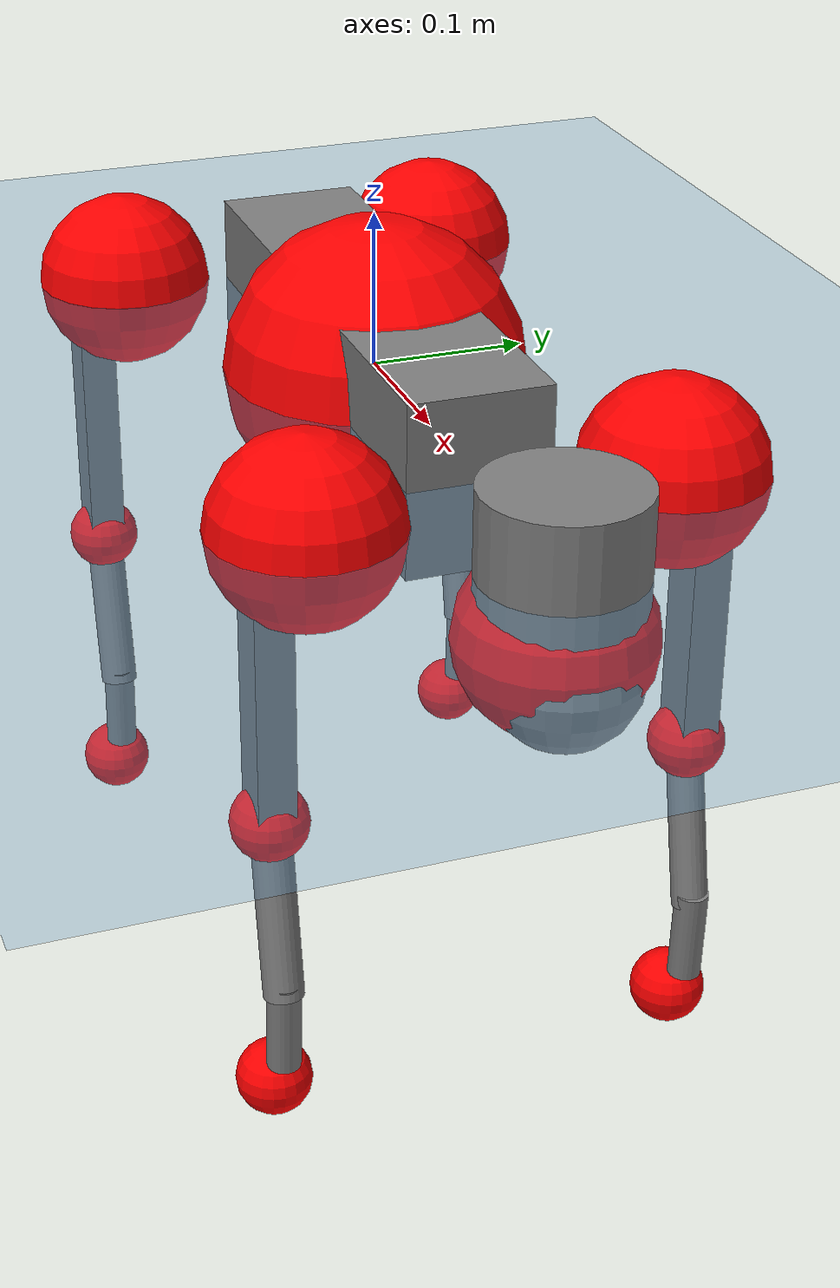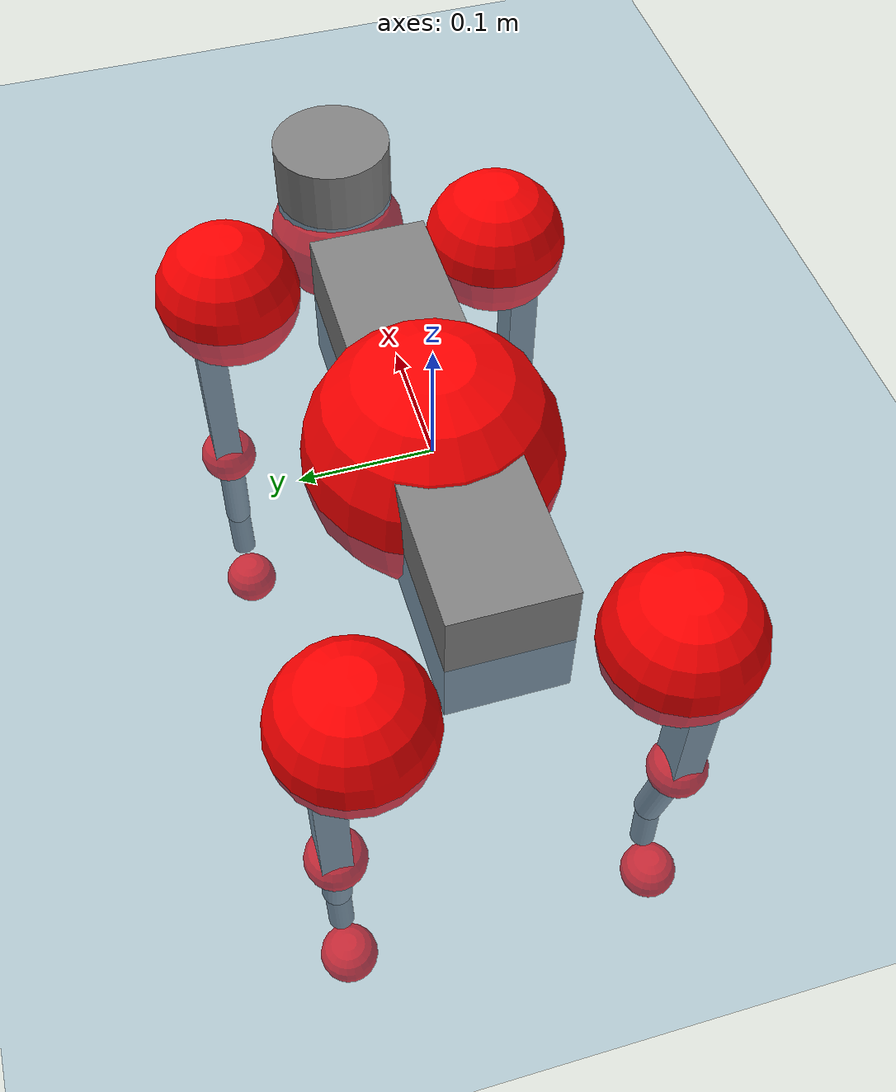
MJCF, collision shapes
<mujoco model="go2">
  <compiler angle="radian" assetdir="assets" balanceinertia="true" inertiafromgeom="false"/>

  <option timestep="0.005" density="1.2" viscosity="2e-05"/>

  <size nkey="1"/>

  <visual>
    <quality shadowsize="8192"/>
    <map shadowclip="0.5"/>
  </visual>

  <default>
    <default class="/">
      <geom contype="0" conaffinity="0" group="1" solref="-1000 -80"/>
      <site size="0.01 0.005 0.005" group="5"/>
      <general forcelimited="true" biastype="affine" gainprm="20" biasprm="0 -20 -0.5"/>
      <default class="go2">
        <joint armature="0.01" damping="0.01" frictionloss="0.2"/>
        <geom condim="1" margin="0.001"/>
        <default class="visual">
          <geom type="mesh" group="2"/>
        </default>
        <default class="collision">
          <geom group="3"/>
          <default class="foot">
            <geom size="0.022 0 0" condim="6" priority="1" friction="0.8 0.02 0.01" solimp="0.015 1 0.022"/>
          </default>
        </default>
        <default class="reward_collision_sphere">
          <geom group="5" rgba="1 0 0 1"/>
        </default>
      </default>
    </default>
  </default>

  <asset>
    <texture type="skybox" colorspace="auto" name="//unnamed_texture_0" builtin="gradient" rgb1="0.95 0.95 0.95" rgb2="0.95 0.95 0.95" width="100" height="600"/>
    <texture type="2d" colorspace="auto" name="texplane" builtin="checker" rgb1="0.345 0.575 0.748" rgb2="0.345 0.575 0.748" markrgb="1 1 1" width="512" height="512"/>
    <material name="MatPlane" class="/" texture="texplane" texuniform="true" texrepeat="2 2" specular="0.9"/>
    <material name="metal" class="/" rgba="0.9 0.95 0.95 1"/>
    <material name="black" class="/" rgba="0 0 0 1"/>
    <material name="white" class="/"/>
    <material name="gray" class="/" rgba="0.671705 0.692426 0.77427 1"/>
    <mesh name="base_0" class="/" file="base_0.obj"/>
    <mesh name="base_1" class="/" file="base_1.obj"/>
    <mesh name="base_2" class="/" file="base_2.obj"/>
    <mesh name="base_3" class="/" file="base_3.obj"/>
    <mesh name="base_4" class="/" file="base_4.obj"/>
    <mesh name="hip_0" class="/" file="hip_0.obj"/>
    <mesh name="hip_1" class="/" file="hip_1.obj"/>
    <mesh name="thigh_0" class="/" file="thigh_0.obj"/>
    <mesh name="thigh_1" class="/" file="thigh_1.obj"/>
    <mesh name="thigh_mirror_0" class="/" file="thigh_mirror_0.obj"/>
    <mesh name="thigh_mirror_1" class="/" file="thigh_mirror_1.obj"/>
    <mesh name="calf_0" class="/" file="calf_0.obj"/>
    <mesh name="calf_1" class="/" file="calf_1.obj"/>
    <mesh name="calf_mirror_0" class="/" file="calf_mirror_0.obj"/>
    <mesh name="calf_mirror_1" class="/" file="calf_mirror_1.obj"/>
    <mesh name="foot" class="/" file="foot.obj"/>
  </asset>

  <worldbody>
    <geom name="floor" class="/" size="100 100 0.125" type="plane" group="0" material="MatPlane"/>
    <light name="toplight_shadow" class="/" pos="0 0 5" dir="0.0990148 0.0990148 -0.990148" type="directional" ambient="0.04 0.04 0.04" diffuse="0.55 0.55 0.55" specular="0.12 0.12 0.12"/>
    <light name="toplight_fill" class="/" pos="0 0 5" dir="0.0990148 0.0990148 -0.990148" type="directional" castshadow="false" ambient="0.04 0.04 0.04" diffuse="0.3 0.3 0.3" specular="0.08 0.08 0.08"/>
    <body name="trunk" childclass="go2" pos="0.000514843 0.000219647 -0.00154648" quat="1 -0.000491955 0.000264019 -0.000184578">
      <inertial pos="0.0229102 0.000794521 -0.0049287" quat="0.00144098 0.712995 0.00295065 0.701162" mass="6.51202" diaginertia="0.144222 0.0830549 0.014332"/>
      <joint name="//unnamed_joint_0" type="free" armature="0" damping="0" frictionloss="0"/>
      <geom name="//unnamed_geom_1" class="visual" material="black" mesh="base_0"/>
      <geom name="//unnamed_geom_2" class="visual" material="black" mesh="base_1"/>
      <geom name="//unnamed_geom_3" class="visual" material="black" mesh="base_2"/>
      <geom name="//unnamed_geom_4" class="visual" material="white" mesh="base_3"/>
      <geom name="//unnamed_geom_5" class="visual" material="gray" mesh="base_4"/>
      <geom name="trunk_1" class="collision" size="0.182927 0.0454643 0.0554324" type="box"/>
      <geom name="trunk_2" class="collision" size="0.0486249 0.0437624" pos="0.301602 0 0.00895411" type="cylinder"/>
      <geom name="trunk_3" class="collision" size="0.0457074" pos="0.310068 0 -0.0537247"/>
      <geom name="//unnamed_geom_9" class="reward_collision_sphere" size="0.0972498"/>
      <geom name="//unnamed_geom_10" class="reward_collision_sphere" size="0.0583499" pos="0.296311 0 -0.0402935"/>
      <site name="imu" pos="-0.0253591 -0.00393808 0.0371798" size="0.00972498"/>
      <camera name="track" pos="0 -1.92766 0" quat="0.707107 0.707107 0 0" mode="trackcom"/>
      <camera name="ego_camera" pos="0.330175 0 0.0402935" quat="-0.5 -0.5 0.5 0.5"/>
      <body name="FL_hip" pos="0.203725 0.0439427 0.000794482" quat="1 -8.86554e-05 -3.47558e-05 -9.03577e-05">
        <inertial pos="-0.00637802 0.00178223 -0.00196159" quat="0.502713 0.498724 0.504697 0.493796" mass="0.630018" diaginertia="0.00118366 0.00050313 0.000279379"/>
        <joint name="FL_hip_joint" pos="0 0 0" axis="0.999992 0.000678102 -0.00389689" range="-1.05146 1.03132" armature="0.00972781" damping="0.00399964" frictionloss="0.185614"/>
        <geom name="//unnamed_geom_11" class="visual" material="metal" mesh="hip_0"/>
        <geom name="//unnamed_geom_12" class="visual" material="gray" mesh="hip_1"/>
        <geom name="//unnamed_geom_13" class="collision" size="0.0447349 0.01945" pos="0 0.0771064 0" quat="0.707107 0.707107 0 0" type="cylinder"/>
        <geom name="//unnamed_geom_14" class="reward_collision_sphere" size="0.0583499" pos="0 0.0674681 0"/>
        <body name="FL_thigh" pos="-0.00123129 0.0908085 0.00210691" quat="1 0.000147277 -2.961e-07 6.63125e-06">
          <inertial pos="-0.00429337 -0.0212992 -0.0288586" quat="0.830661 0.0852826 -0.0216858 0.549781" mass="1.05077" diaginertia="0.00784997 0.00481365 0.000499344"/>
          <joint name="FL_thigh_joint" pos="0 0 0" axis="0.00722165 0.999967 0.00359929" stiffness="0.00200161" range="-1.55219 3.48945" armature="0.00979551" damping="0.00695191" frictionloss="0.194034"/>
          <geom name="//unnamed_geom_15" class="visual" material="metal" mesh="thigh_0"/>
          <geom name="//unnamed_geom_16" class="visual" material="gray" mesh="thigh_1"/>
          <geom name="//unnamed_geom_17" class="collision" size="0.103571 0.0119131 0.0165325" pos="0 0 -0.0953613" quat="0.707107 0 0.707107 0" type="box"/>
          <body name="FL_calf" pos="-0.000924044 -0.000751867 -0.190498" quat="1 1.92209e-05 1.14331e-05 -3.1194e-05">
            <inertial pos="0.00480757 -0.00170621 -0.125999" quat="0.710088 0.000962821 -0.00427313 0.7041" mass="0.223177" diaginertia="0.00195869 0.00122772 3.06235e-05"/>
            <joint name="FL_calf_joint" pos="0 0 0" axis="0.00127612 0.999999 -0.000301826" stiffness="0.00643845" range="-2.76241 -0.851839" armature="0.0096639" damping="0.0109173" frictionloss="0.210938"/>
            <geom name="//unnamed_geom_18" class="visual" material="gray" mesh="calf_0"/>
            <geom name="//unnamed_geom_19" class="visual" material="black" mesh="calf_1"/>
            <geom name="FL_calf0" class="collision" size="0.01167 0.0583499" pos="0.00846602 0 -0.0537247" quat="0.994493 0 -0.104807 0" type="cylinder"/>
            <geom name="//unnamed_geom_21" class="collision" size="0.0106975 0.0316062" pos="0.021165 0 -0.132521" quat="0.999688 0 0.0249974 0" type="cylinder"/>
            <geom name="//unnamed_geom_22" class="visual" pos="0 0 -0.190723" quat="1 0 0 0" material="black" mesh="foot"/>
            <geom name="FL_foot" class="foot" size="0.0173559" pos="-0.0021165 0 -0.190723"/>
            <geom name="//unnamed_geom_24" class="reward_collision_sphere" size="0.0243124"/>
            <geom name="//unnamed_geom_25" class="reward_collision_sphere" size="0.0243124" pos="-0.0021165 0 -0.190723"/>
            <site name="FL_foot" class="foot" pos="-0.0021165 0 -0.190723" size="0.00972498"/>
          </body>
        </body>
      </body>
      <body name="FR_hip" pos="0.205316 -0.0451784 -0.000376205" quat="1 -0.000792401 -0.00055768 1.55234e-05">
        <inertial pos="-0.00497794 -0.00176986 -0.000744007" quat="0.492035 0.508525 0.503317 0.495959" mass="0.640261" diaginertia="0.00118698 0.00050057 0.000279855"/>
        <joint name="FR_hip_joint" pos="0 0 0" axis="0.999998 0.000648143 -0.00190425" range="-1.07895 1.06762" armature="0.009672" damping="0.0112147" frictionloss="0.18921"/>
        <geom name="//unnamed_geom_26" class="visual" pos="0 5.96045e-10 2.55656e-08" quat="4.63268e-05 1 0 0" material="metal" mesh="hip_0"/>
        <geom name="//unnamed_geom_27" class="visual" pos="0 9.6626e-10 -6.32335e-08" quat="4.63268e-05 1 0 0" material="gray" mesh="hip_1"/>
        <geom name="//unnamed_geom_28" class="collision" size="0.0447349 0.01945" pos="0 -0.0771064 0" quat="0.707107 0.707107 0 0" type="cylinder"/>
        <geom name="//unnamed_geom_29" class="reward_collision_sphere" size="0.0583499" pos="0 -0.0674681 0"/>
        <body name="FR_thigh" pos="9.81005e-05 -0.0915195 0.00231152" quat="1 6.3987e-06 -0.000361005 -0.000133467">
          <inertial pos="-0.00347598 0.0211869 -0.0282576" quat="0.552815 -0.0206896 0.0849956 0.8287" mass="1.06139" diaginertia="0.00787484 0.00484359 0.000500186"/>
          <joint name="FR_thigh_joint" pos="0 0 0" axis="0.00269252 -0.999996 -0.00106502" stiffness="0.00302096" range="-3.48999 1.58508" armature="0.0102222" damping="0.00554078" frictionloss="0.192781"/>
          <geom name="//unnamed_geom_30" class="visual" material="metal" mesh="thigh_mirror_0"/>
          <geom name="//unnamed_geom_31" class="visual" material="gray" mesh="thigh_mirror_1"/>
          <geom name="//unnamed_geom_32" class="collision" size="0.103571 0.0119131 0.0165325" pos="0 0 -0.0953613" quat="0.707107 0 0.707107 0" type="box"/>
          <body name="FR_calf" pos="-0.00150963 0.000159369 -0.190224" quat="1 -1.55021e-06 6.47065e-05 -0.000135563">
            <inertial pos="0.00659529 -0.000279494 -0.126434" quat="0.701211 -0.00183898 0.00934676 0.71289" mass="0.21761" diaginertia="0.00195139 0.00121236 3.04e-05"/>
            <joint name="FR_calf_joint" pos="0 0 0" axis="-0.000783963 -1 0.000285489" range="0.841811 2.71704" armature="0.00960383" damping="0.0038144" frictionloss="0.204034"/>
            <geom name="//unnamed_geom_33" class="visual" material="gray" mesh="calf_mirror_0"/>
            <geom name="//unnamed_geom_34" class="visual" material="black" mesh="calf_mirror_1"/>
            <geom name="FR_calf0" class="collision" size="0.0126425 0.0583499" pos="0.0105825 0 -0.0537247" quat="0.995004 0 -0.0998334 0" type="cylinder"/>
            <geom name="//unnamed_geom_36" class="collision" size="0.0106975 0.0316062" pos="0.021165 0 -0.132521" quat="0.999688 0 0.0249974 0" type="cylinder"/>
            <geom name="//unnamed_geom_37" class="visual" pos="0 0 -0.190723" quat="1 0 0 0" material="black" mesh="foot"/>
            <geom name="FR_foot" class="foot" size="0.0213684" pos="-0.0021165 0 -0.190723"/>
            <geom name="//unnamed_geom_39" class="reward_collision_sphere" size="0.0243124"/>
            <geom name="//unnamed_geom_40" class="reward_collision_sphere" size="0.0243124" pos="-0.0021165 0 -0.190723"/>
            <site name="FR_foot" class="foot" pos="-0.0021165 0 -0.190723" size="0.00972498"/>
          </body>
        </body>
      </body>
      <body name="RL_hip" pos="-0.204908 0.0451897 0.0010842" quat="1 -5.42567e-05 -7.75139e-05 9.81011e-05">
        <inertial pos="0.0060407 0.00152757 -0.00146762" quat="0.50227 0.498286 0.497171 0.502252" mass="0.626344" diaginertia="0.00119946 0.000495081 0.000278754"/>
        <joint name="RL_hip_joint" pos="0 0 0" axis="-0.99982 -0.0100879 -0.0160763" stiffness="0.0030258" range="-1.06433 1.0664" armature="0.0100131" damping="0.0124332" frictionloss="0.194388"/>
        <geom name="//unnamed_geom_41" class="visual" pos="-1.4186e-09 0 -2.78079e-07" quat="4.63268e-05 0 1 0" material="metal" mesh="hip_0"/>
        <geom name="//unnamed_geom_42" class="visual" pos="-2.29973e-09 0 -2.46616e-07" quat="4.63268e-05 0 1 0" material="gray" mesh="hip_1"/>
        <geom name="//unnamed_geom_43" class="collision" size="0.0447349 0.01945" pos="0 0.0771064 0" quat="0.707107 0.707107 0 0" type="cylinder"/>
        <geom name="//unnamed_geom_44" class="reward_collision_sphere" size="0.0583499" pos="0 0.0674681 0"/>
        <body name="RL_thigh" pos="0.000982381 0.0907025 0.00103051" quat="1 -1.57109e-05 4.99158e-05 2.95508e-05">
          <inertial pos="-0.00210502 -0.0211276 -0.0309903" quat="0.829503 0.084814 -0.0199923 0.551663" mass="1.08735" diaginertia="0.0082053 0.00500736 0.000515524"/>
          <joint name="RL_thigh_joint" pos="0 0 0" axis="-0.0139755 0.999896 0.0035004" range="-0.512616 4.53547" armature="0.00965364" damping="0.0010949" frictionloss="0.185077"/>
          <geom name="//unnamed_geom_45" class="visual" material="metal" mesh="thigh_0"/>
          <geom name="//unnamed_geom_46" class="visual" material="gray" mesh="thigh_1"/>
          <geom name="//unnamed_geom_47" class="collision" size="0.103571 0.0119131 0.0165325" pos="0 0 -0.0953613" quat="0.707107 0 0.707107 0" type="box"/>
          <body name="RL_calf" pos="-0.000188738 -0.00144871 -0.190964" quat="1 2.72642e-06 -3.94519e-07 -2.29129e-05">
            <inertial pos="0.00517642 -0.000564147 -0.128344" quat="0.713684 -0.000769724 -0.00353155 0.700459" mass="0.222175" diaginertia="0.0019798 0.00123543 3.03152e-05"/>
            <joint name="RL_calf_joint" pos="0 0 0" axis="0.00627008 0.99995 0.00772813" range="-2.71176 -0.874713" armature="0.0101966" damping="0" frictionloss="0.195274"/>
            <geom name="//unnamed_geom_48" class="visual" material="gray" mesh="calf_0"/>
            <geom name="//unnamed_geom_49" class="visual" material="black" mesh="calf_1"/>
            <geom name="RL_calf0" class="collision" size="0.0126425 0.0583499" pos="0.0105825 0 -0.0537247" quat="0.995004 0 -0.0998334 0" type="cylinder"/>
            <geom name="//unnamed_geom_51" class="collision" size="0.0106975 0.0316062" pos="0.021165 0 -0.132521" quat="0.999688 0 0.0249974 0" type="cylinder"/>
            <geom name="//unnamed_geom_52" class="visual" pos="0 0 -0.190723" quat="1 0 0 0" material="black" mesh="foot"/>
            <geom name="RL_foot" class="foot" size="0.0189684" pos="-0.0021165 0 -0.190723"/>
            <geom name="//unnamed_geom_54" class="reward_collision_sphere" size="0.0243124"/>
            <geom name="//unnamed_geom_55" class="reward_collision_sphere" size="0.0243124" pos="-0.0021165 0 -0.190723"/>
            <site name="RL_foot" class="foot" pos="-0.0021165 0 -0.190723" size="0.00972498"/>
          </body>
        </body>
      </body>
      <body name="RR_hip" pos="-0.203094 -0.0453898 0.000866706" quat="1 0.000275523 3.61327e-05 -6.77408e-05">
        <inertial pos="0.0054667 -0.00119613 0.000484906" quat="0.496817 0.501133 0.498888 0.503139" mass="0.620495" diaginertia="0.00121534 0.000503549 0.000278396"/>
        <joint name="RR_hip_joint" pos="0 0 0" axis="-0.999956 0.00178482 -0.00916672" range="-1.02847 1.04854" armature="0.0097181" damping="0.0018397" frictionloss="0.21206"/>
        <geom name="//unnamed_geom_56" class="visual" pos="1.41533e-09 5.96045e-10 -3.03645e-07" quat="2.14617e-09 4.63268e-05 4.63268e-05 -1" material="metal" mesh="hip_0"/>
        <geom name="//unnamed_geom_57" class="visual" pos="2.30781e-09 9.6626e-10 -1.83383e-07" quat="2.14617e-09 4.63268e-05 4.63268e-05 -1" material="gray" mesh="hip_1"/>
        <geom name="//unnamed_geom_58" class="collision" size="0.0447349 0.01945" pos="0 -0.0771064 0" quat="0.707107 0.707107 0 0" type="cylinder"/>
        <geom name="//unnamed_geom_59" class="reward_collision_sphere" size="0.0583499" pos="0 -0.0674681 0"/>
        <body name="RR_thigh" pos="7.68373e-06 -0.0927305 -0.00160649" quat="1 7.10805e-05 -3.28727e-05 0.000241959">
          <inertial pos="-0.00315706 0.0225852 -0.0309998" quat="0.551746 -0.021117 0.0825558 0.829648" mass="1.04323" diaginertia="0.00801225 0.00488679 0.000509265"/>
          <joint name="RR_thigh_joint" pos="0 0 0" axis="0.00052851 -1 0.000388989" stiffness="0.000201085" range="-4.53584 0.523373" armature="0.00986127" damping="0.0223094" frictionloss="0.196433"/>
          <geom name="//unnamed_geom_60" class="visual" material="metal" mesh="thigh_mirror_0"/>
          <geom name="//unnamed_geom_61" class="visual" material="gray" mesh="thigh_mirror_1"/>
          <geom name="//unnamed_geom_62" class="collision" size="0.103571 0.0119131 0.0165325" pos="0 0 -0.0953613" quat="0.707107 0 0.707107 0" type="box"/>
          <body name="RR_calf" pos="-0.000184118 6.42036e-05 -0.192315" quat="1 0.000712133 -0.000228953 0.000427323">
            <inertial pos="0.00605722 0.000656353 -0.126546" quat="0.705573 -0.00598218 -0.00263536 0.708607" mass="0.219135" diaginertia="0.00194828 0.00119262 2.98595e-05"/>
            <joint name="RR_calf_joint" pos="0 0 0" axis="-0.00691186 -0.999935 -0.00910058" range="0.853095 2.7279" armature="0.00980717" damping="0.00591313" frictionloss="0.197423"/>
            <geom name="//unnamed_geom_63" class="visual" material="gray" mesh="calf_mirror_0"/>
            <geom name="//unnamed_geom_64" class="visual" material="black" mesh="calf_mirror_1"/>
            <geom name="RR_calf0" class="collision" size="0.0126425 0.0583499" pos="0.0105825 0 -0.0537247" quat="0.995004 0 -0.0998334 0" type="cylinder"/>
            <geom name="//unnamed_geom_66" class="collision" size="0.0106975 0.0316062" pos="0.021165 0 -0.132521" quat="0.999688 0 0.0249974 0" type="cylinder"/>
            <geom name="//unnamed_geom_67" class="visual" pos="0 0 -0.190723" quat="1 0 0 0" material="black" mesh="foot"/>
            <geom name="RR_foot" class="foot" size="0.0231567" pos="-0.0021165 0 -0.190723"/>
            <geom name="//unnamed_geom_69" class="reward_collision_sphere" size="0.0243124"/>
            <geom name="//unnamed_geom_70" class="reward_collision_sphere" size="0.0243124" pos="-0.0021165 0 -0.190723"/>
            <site name="RR_foot" class="foot" pos="-0.0021165 0 -0.190723" size="0.00972498"/>
          </body>
        </body>
      </body>
    </body>
  </worldbody>

  <contact>
    <pair class="/" geom1="floor" geom2="FL_foot" name="//unnamed_contact_0"/>
    <pair class="/" geom1="floor" geom2="FR_foot" name="//unnamed_contact_1"/>
    <pair class="/" geom1="floor" geom2="RL_foot" name="//unnamed_contact_2"/>
    <pair class="/" geom1="floor" geom2="RR_foot" name="//unnamed_contact_3"/>
  </contact>

  <actuator>
    <general name="FL_hip" class="/" joint="FL_hip_joint" forcerange="-23.2973 23.2973" gainprm="19.6299" biasprm="0 -19.6299 -0.493999"/>
    <general name="FL_thigh" class="/" joint="FL_thigh_joint" forcerange="-23.428 23.428" gainprm="19.6299" biasprm="0 -19.6299 -0.493999"/>
    <general name="FL_calf" class="/" joint="FL_calf_joint" forcerange="-42.6987 42.6987" gainprm="19.6299" biasprm="0 -19.6299 -0.493999"/>
    <general name="FR_hip" class="/" joint="FR_hip_joint" forcerange="-22.5806 22.5806" gainprm="19.6299" biasprm="0 -19.6299 -0.493999"/>
    <general name="FR_thigh" class="/" joint="FR_thigh_joint" forcerange="-22.253 22.253" gainprm="19.6299" biasprm="0 -19.6299 -0.493999"/>
    <general name="FR_calf" class="/" joint="FR_calf_joint" forcerange="-43.8404 43.8404" gainprm="19.6299" biasprm="0 -19.6299 -0.493999"/>
    <general name="RL_hip" class="/" joint="RL_hip_joint" forcerange="-23.1052 23.1052" gainprm="19.6299" biasprm="0 -19.6299 -0.493999"/>
    <general name="RL_thigh" class="/" joint="RL_thigh_joint" forcerange="-21.8236 21.8236" gainprm="19.6299" biasprm="0 -19.6299 -0.493999"/>
    <general name="RL_calf" class="/" joint="RL_calf_joint" forcerange="-45.7016 45.7016" gainprm="19.6299" biasprm="0 -19.6299 -0.493999"/>
    <general name="RR_hip" class="/" joint="RR_hip_joint" forcerange="-23.1135 23.1135" gainprm="19.6299" biasprm="0 -19.6299 -0.493999"/>
    <general name="RR_thigh" class="/" joint="RR_thigh_joint" forcerange="-23.6794 23.6794" gainprm="19.6299" biasprm="0 -19.6299 -0.493999"/>
    <general name="RR_calf" class="/" joint="RR_calf_joint" forcerange="-43.2642 43.2642" gainprm="19.6299" biasprm="0 -19.6299 -0.493999"/>
  </actuator>

  <sensor>
    <gyro site="imu" name="imu_angular_velocity"/>
    <velocimeter site="imu" name="imu_linear_velocity"/>
    <framelinvel objtype="site" objname="FL_foot" name="FL_foot_global_linear_velocity"/>
    <framelinvel objtype="site" objname="FR_foot" name="FR_foot_global_linear_velocity"/>
    <framelinvel objtype="site" objname="RL_foot" name="RL_foot_global_linear_velocity"/>
    <framelinvel objtype="site" objname="RR_foot" name="RR_foot_global_linear_velocity"/>
  </sensor>

  <keyframe>
    <key name="home" qpos="0 0 0.325 1 0 0 0 0.1 0.8 -1.5 -0.1 -0.8 1.5 -0.1 0.8 -1.5 0.1 -0.8 1.5"/>
  </keyframe>
</mujoco>
